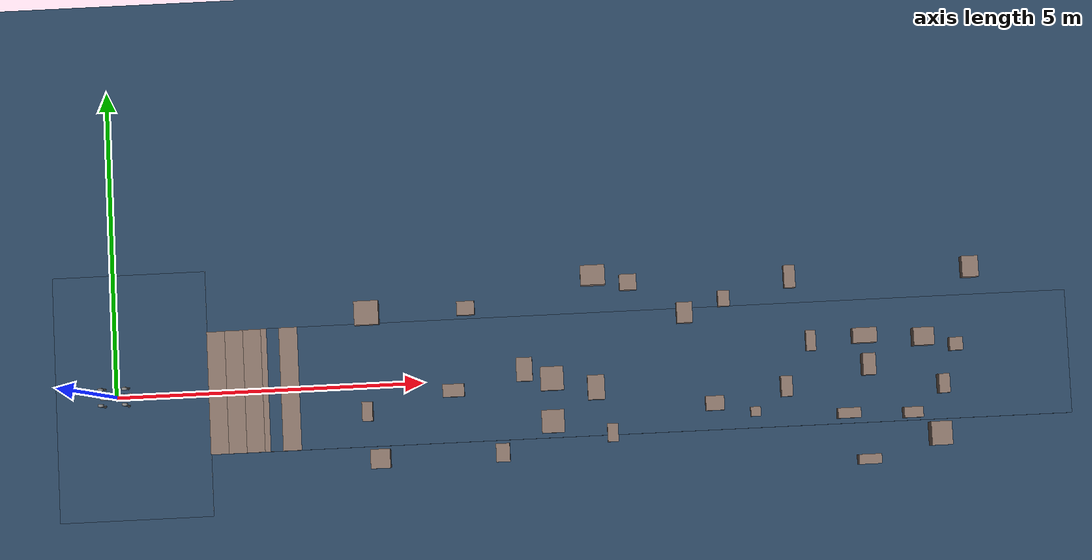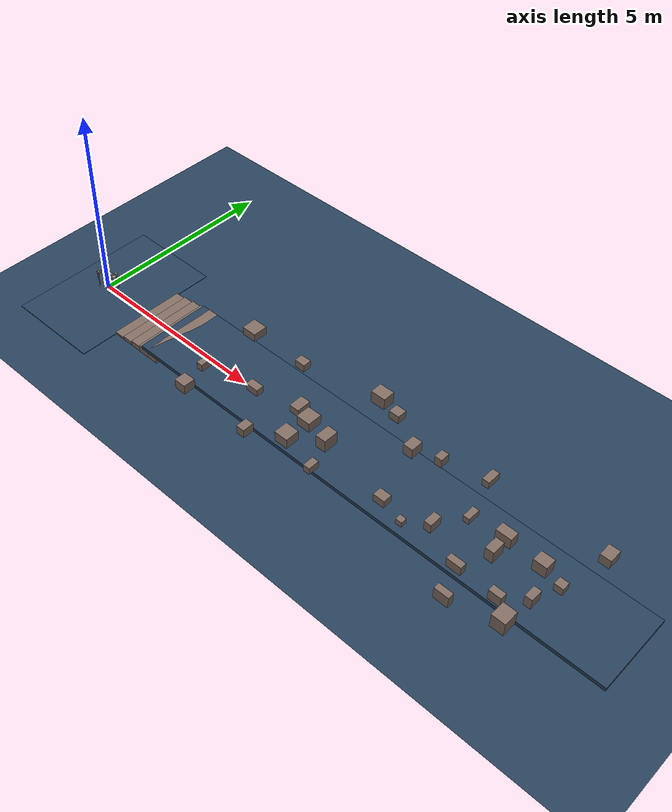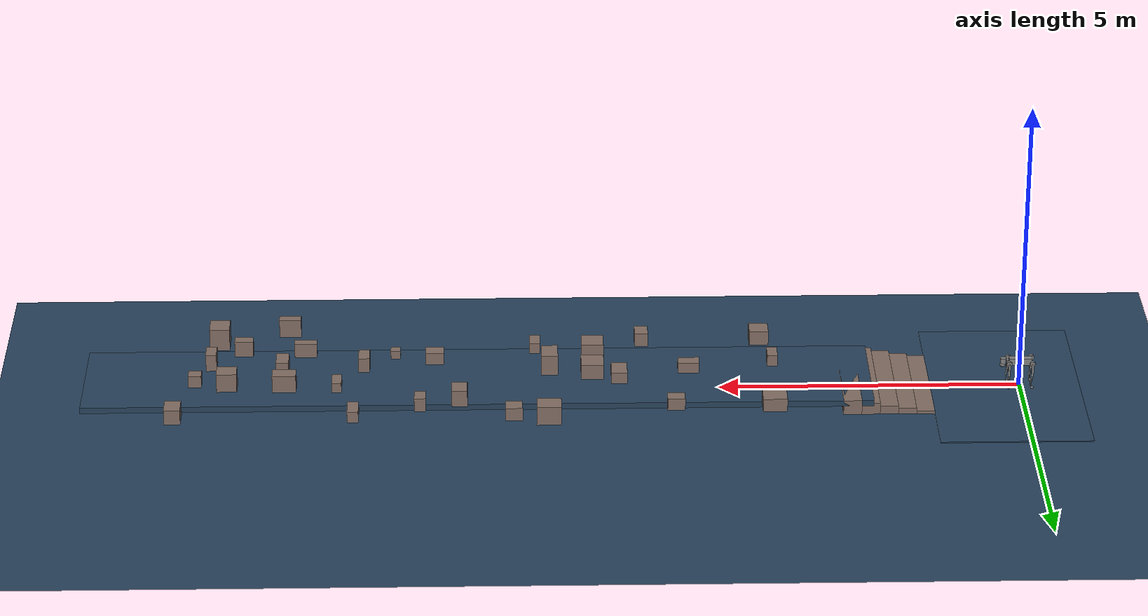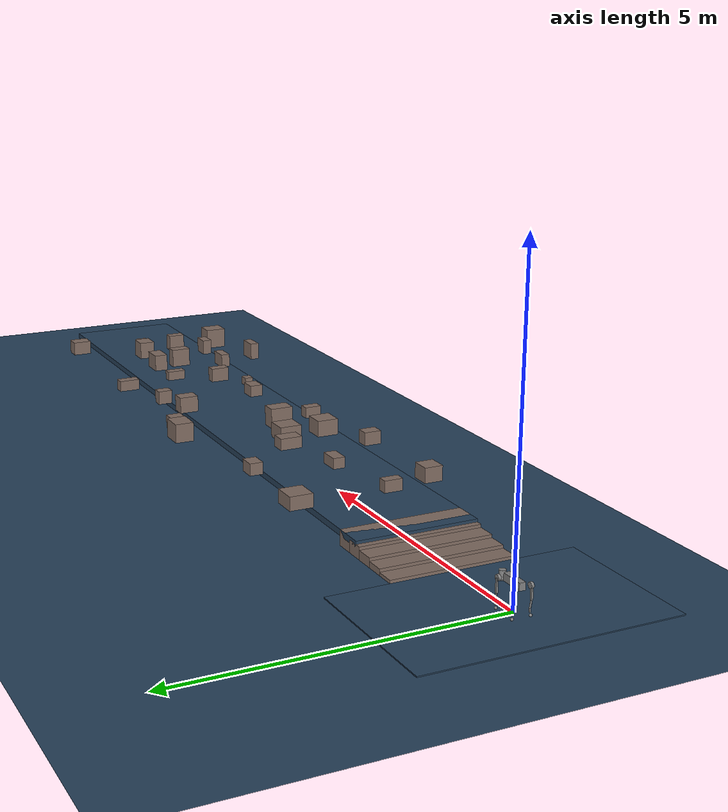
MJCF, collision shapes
<mujoco model="go2 gauntlet">
  <include file="go2_model/go2.xml"/>
  <statistic center="0 0 0.1" extent="0.8"/>
  <visual>
    <headlight diffuse="0.6 0.6 0.6" ambient="0.3 0.3 0.3" specular="0 0 0"/>
    <rgba haze="0.15 0.25 0.35 1"/>
    <global azimuth="-130" elevation="-20"/>
  </visual>
  <asset>
    <texture type="skybox" builtin="gradient" rgb1="0.3 0.5 0.7" rgb2="0 0 0"
             width="512" height="3072"/>
    <texture type="2d" name="groundplane" builtin="checker" mark="edge"
             rgb1="0.2 0.3 0.4" rgb2="0.1 0.2 0.3"
             markrgb="0.8 0.8 0.8" width="300" height="300"/>
    <material name="groundplane" texture="groundplane" texuniform="true"
              texrepeat="5 5" reflectance="0.2"/>
    <material name="rampmat" rgba="0.45 0.45 0.55 1"/>
    <material name="stepmat" rgba="0.5 0.42 0.38 1"/>
  </asset>
  <worldbody>
    <light pos="0 0 1.5" dir="0 0 -1" directional="true"/>
    <!-- Flat run-up -->
    <geom name="floor" type="plane" size="0 0 0.05" material="groundplane"/>
    <geom name="runup" type="box" pos="0.25 0 -0.05" size="1.2500 2.0 0.05" material="groundplane"/>
    <!-- Stairs: 5 steps, 5 cm rise (baseline safe-stalls at this height, Exp3 F3.4) -->
    <geom name="step_0" type="box" pos="1.6500 0 0.0250" size="0.1500 1.0000 0.025000" material="stepmat"/>
    <geom name="step_1" type="box" pos="1.9500 0 0.0500" size="0.1500 1.0000 0.050000" material="stepmat"/>
    <geom name="step_2" type="box" pos="2.2500 0 0.0750" size="0.1500 1.0000 0.075000" material="stepmat"/>
    <geom name="step_3" type="box" pos="2.5500 0 0.1000" size="0.1500 1.0000 0.100000" material="stepmat"/>
    <geom name="step_4" type="box" pos="2.8500 0 0.1250" size="0.1500 1.0000 0.125000" material="stepmat"/>
    <!-- Landing -->
    <geom name="landing" type="box" pos="9.0000 0 0.2000" size="6.5 1.0000 0.05" material="groundplane"/>
    <geom name="obs_0" type="box" pos="10.3696 -0.7367 0.3226" size="0.0801 0.0771 0.0726" material="stepmat"/>
    <geom name="obs_1" type="box" pos="13.1276 0.3412 0.4108" size="0.1662 0.1430 0.1608" material="stepmat"/>
    <geom name="obs_2" type="box" pos="12.1585 -1.5912 0.4076" size="0.1822 0.0792 0.1576" material="stepmat"/>
    <geom name="obs_3" type="box" pos="5.7566 1.1622 0.3515" size="0.1427 0.1125 0.1015" material="stepmat"/>
    <geom name="obs_4" type="box" pos="4.2832 -1.2023 0.3783" size="0.1588 0.1559 0.1283" material="stepmat"/>
    <geom name="obs_5" type="box" pos="7.8368 1.5911 0.4131" size="0.1976 0.1607 0.1631" material="stepmat"/>
    <geom name="obs_6" type="box" pos="10.8845 -0.3555 0.3760" size="0.0919 0.1652 0.1260" material="stepmat"/>
    <geom name="obs_7" type="box" pos="7.1024 -0.0453 0.3802" size="0.1862 0.1918 0.1302" material="stepmat"/>
    <geom name="obs_8" type="box" pos="9.7153 -0.5700 0.3539" size="0.1493 0.1172 0.1039" material="stepmat"/>
    <geom name="obs_9" type="box" pos="12.9027 -0.8731 0.3901" size="0.1529 0.0855 0.1401" material="stepmat"/>
    <geom name="obs_10" type="box" pos="11.8710 -0.8340 0.3733" size="0.1846 0.0823 0.1233" material="stepmat"/>
    <geom name="obs_11" type="box" pos="5.5028 -0.1589 0.3418" size="0.1745 0.1038 0.0918" material="stepmat"/>
    <geom name="obs_12" type="box" pos="8.0455 -0.9648 0.3458" size="0.0863 0.1475 0.0958" material="stepmat"/>
    <geom name="obs_13" type="box" pos="13.4211 -0.4316 0.3980" size="0.0882 0.1536 0.1480" material="stepmat"/>
    <geom name="obs_14" type="box" pos="8.4038 1.4547 0.3614" size="0.1375 0.1282 0.1114" material="stepmat"/>
    <geom name="obs_15" type="box" pos="13.9510 1.4366 0.3771" size="0.1325 0.1697 0.1271" material="stepmat"/>
    <geom name="obs_16" type="box" pos="9.2931 0.9145 0.3927" size="0.1268 0.1668 0.1427" material="stepmat"/>
    <geom name="obs_17" type="box" pos="13.3206 -1.2322 0.4379" size="0.1661 0.1909 0.1879" material="stepmat"/>
    <geom name="obs_18" type="box" pos="4.1471 1.1636 0.3635" size="0.1976 0.1947 0.1135" material="stepmat"/>
    <geom name="obs_19" type="box" pos="12.2237 -0.0640 0.4185" size="0.1040 0.1752 0.1685" material="stepmat"/>
    <geom name="obs_20" type="box" pos="6.6613 0.1246 0.3496" size="0.1303 0.1914 0.0996" material="stepmat"/>
    <geom name="obs_21" type="box" pos="11.3201 0.3660 0.3338" size="0.0785 0.1649 0.0838" material="stepmat"/>
    <geom name="obs_22" type="box" pos="13.6606 0.1991 0.3514" size="0.1074 0.1052 0.1014" material="stepmat"/>
    <geom name="obs_23" type="box" pos="6.2587 -1.2014 0.3652" size="0.1110 0.1483 0.1152" material="stepmat"/>
    <geom name="obs_24" type="box" pos="12.1812 0.4048 0.4013" size="0.1949 0.1212 0.1513" material="stepmat"/>
    <geom name="obs_25" type="box" pos="9.9392 1.1145 0.3701" size="0.0932 0.1258 0.1201" material="stepmat"/>
    <geom name="obs_26" type="box" pos="4.0995 -0.4319 0.3497" size="0.0848 0.1566 0.0997" material="stepmat"/>
    <geom name="obs_27" type="box" pos="11.0265 1.4202 0.3470" size="0.0909 0.1831 0.0970" material="stepmat"/>
    <geom name="obs_28" type="box" pos="7.8077 -0.2247 0.4250" size="0.1361 0.1971 0.1750" material="stepmat"/>
    <geom name="obs_29" type="box" pos="7.0886 -0.7365 0.3899" size="0.1829 0.1852 0.1399" material="stepmat"/>
  </worldbody>
</mujoco>

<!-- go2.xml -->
<mujoco model="go2">
  <compiler angle="radian" meshdir="." autolimits="true"/>

  <option cone="elliptic" impratio="100"/>

  <default>
    <default class="go2">
      <geom friction="0.6" margin="0.001" condim="1"/>
      <joint axis="0 1 0" damping="2" armature="0.01" frictionloss="0.2"/>
      <motor ctrlrange="-23.7 23.7"/>
      <default class="abduction">
        <joint axis="1 0 0" range="-1.0472 1.0472"/>
      </default>
      <default class="hip">
        <default class="front_hip">
          <joint range="-1.5708 3.4907"/>
        </default>
        <default class="back_hip">
          <joint range="-0.5236 4.5379"/>
        </default>
      </default>
      <default class="knee">
        <joint range="-2.7227 -0.83776"/>
        <motor ctrlrange="-45.43 45.43"/>
      </default>
      <default class="visual">
        <geom type="mesh" contype="0" conaffinity="0" group="2"/>
      </default>
      <default class="collision">
        <geom group="3"/>
        <default class="foot">
          <geom size="0.022" pos="-0.002 0 -0.213" priority="1" solimp="0.015 1 0.022" condim="6"
            friction="0.8 0.02 0.01"/>
        </default>
      </default>
    </default>
  </default>

  <asset>
    <material name="metal" rgba=".9 .95 .95 1"/>
    <material name="black" rgba="0 0 0 1"/>
    <material name="white" rgba="1 1 1 1"/>
    <material name="gray" rgba="0.671705 0.692426 0.774270 1"/>

    <mesh file="base_0.obj"/>
    <mesh file="base_1.obj"/>
    <mesh file="base_2.obj"/>
    <mesh file="base_3.obj"/>
    <mesh file="base_4.obj"/>
    <mesh file="hip_0.obj"/>
    <mesh file="hip_1.obj"/>
    <mesh file="thigh_0.obj"/>
    <mesh file="thigh_1.obj"/>
    <mesh file="thigh_mirror_0.obj"/>
    <mesh file="thigh_mirror_1.obj"/>
    <mesh file="calf_0.obj"/>
    <mesh file="calf_1.obj"/>
    <mesh file="calf_mirror_0.obj"/>
    <mesh file="calf_mirror_1.obj"/>
    <mesh file="foot.obj"/>
  </asset>

  <worldbody>
    <body name="base" pos="0 0 0.445" childclass="go2">
      <inertial pos="0.021112 0 -0.005366" quat="-0.000543471 0.713435 -0.00173769 0.700719" mass="6.921"
        diaginertia="0.107027 0.0980771 0.0244531"/>
      <freejoint/>
      <geom mesh="base_0" material="black" class="visual"/>
      <geom mesh="base_1" material="black" class="visual"/>
      <geom mesh="base_2" material="black" class="visual"/>
      <geom mesh="base_3" material="white" class="visual"/>
      <geom mesh="base_4" material="gray" class="visual"/>
      <geom size="0.1881 0.04675 0.057" type="box" class="collision"/>
      <geom size="0.05 0.045" pos="0.285 0 0.01" type="cylinder" class="collision"/>
      <geom size="0.047" pos="0.293 0 -0.06" class="collision"/>
      <site name="imu" pos="-0.02557 0 0.04232"/>
      <body name="FL_hip" pos="0.1934 0.0465 0">
        <inertial pos="-0.0054 0.00194 -0.000105" quat="0.497014 0.499245 0.505462 0.498237" mass="0.678"
          diaginertia="0.00088403 0.000596003 0.000479967"/>
        <joint name="FL_hip_joint" class="abduction"/>
        <geom mesh="hip_0" material="metal" class="visual"/>
        <geom mesh="hip_1" material="gray" class="visual"/>
        <geom size="0.046 0.02" pos="0 0.08 0" quat="1 1 0 0" type="cylinder" class="collision"/>
        <body name="FL_thigh" pos="0 0.0955 0">
          <inertial pos="-0.00374 -0.0223 -0.0327" quat="0.829533 0.0847635 -0.0200632 0.551623" mass="1.152"
            diaginertia="0.00594973 0.00584149 0.000878787"/>
          <joint name="FL_thigh_joint" class="front_hip"/>
          <geom mesh="thigh_0" material="metal" class="visual"/>
          <geom mesh="thigh_1" material="gray" class="visual"/>
          <geom size="0.1065 0.01225 0.017" pos="0 0 -0.1065" quat="0.707107 0 0.707107 0" type="box" class="collision"/>
          <body name="FL_calf" pos="0 0 -0.213">
            <inertial pos="0.00629595 -0.000622121 -0.141417" quat="0.710672 0.00154099 -0.00450087 0.703508"
              mass="0.241352" diaginertia="0.0014901 0.00146356 5.31397e-05"/>
            <joint name="FL_calf_joint" class="knee"/>
            <geom mesh="calf_0" material="gray" class="visual"/>
            <geom mesh="calf_1" material="black" class="visual"/>
            <geom size="0.012 0.06" pos="0.008 0 -0.06" quat="0.994493 0 -0.104807 0" type="cylinder" class="collision"/>
            <geom size="0.011 0.0325" pos="0.02 0 -0.148" quat="0.999688 0 0.0249974 0" type="cylinder" class="collision"/>
            <geom pos="0 0 -0.213" mesh="foot" class="visual" material="black"/>
            <geom name="FL" class="foot"/>
          </body>
        </body>
      </body>
      <body name="FR_hip" pos="0.1934 -0.0465 0">
        <inertial pos="-0.0054 -0.00194 -0.000105" quat="0.498237 0.505462 0.499245 0.497014" mass="0.678"
          diaginertia="0.00088403 0.000596003 0.000479967"/>
        <joint name="FR_hip_joint" class="abduction"/>
        <geom mesh="hip_0" material="metal" class="visual" quat="4.63268e-05 1 0 0"/>
        <geom mesh="hip_1" material="gray" class="visual" quat="4.63268e-05 1 0 0"/>
        <geom size="0.046 0.02" pos="0 -0.08 0" quat="0.707107 0.707107 0 0" type="cylinder" class="collision"/>
        <body name="FR_thigh" pos="0 -0.0955 0">
          <inertial pos="-0.00374 0.0223 -0.0327" quat="0.551623 -0.0200632 0.0847635 0.829533" mass="1.152"
            diaginertia="0.00594973 0.00584149 0.000878787"/>
          <joint name="FR_thigh_joint" class="front_hip"/>
          <geom mesh="thigh_mirror_0" material="metal" class="visual"/>
          <geom mesh="thigh_mirror_1" material="gray" class="visual"/>
          <geom size="0.1065 0.01225 0.017" pos="0 0 -0.1065" quat="0.707107 0 0.707107 0" type="box" class="collision"/>
          <body name="FR_calf" pos="0 0 -0.213">
            <inertial pos="0.00629595 0.000622121 -0.141417" quat="0.703508 -0.00450087 0.00154099 0.710672"
              mass="0.241352" diaginertia="0.0014901 0.00146356 5.31397e-05"/>
            <joint name="FR_calf_joint" class="knee"/>
            <geom mesh="calf_mirror_0" material="gray" class="visual"/>
            <geom mesh="calf_mirror_1" material="black" class="visual"/>
            <geom size="0.013 0.06" pos="0.01 0 -0.06" quat="0.995004 0 -0.0998334 0" type="cylinder" class="collision"/>
            <geom size="0.011 0.0325" pos="0.02 0 -0.148" quat="0.999688 0 0.0249974 0" type="cylinder" class="collision"/>
            <geom pos="0 0 -0.213" mesh="foot" class="visual" material="black"/>
            <geom name="FR" class="foot"/>
          </body>
        </body>
      </body>
      <body name="RL_hip" pos="-0.1934 0.0465 0">
        <inertial pos="0.0054 0.00194 -0.000105" quat="0.505462 0.498237 0.497014 0.499245" mass="0.678"
          diaginertia="0.00088403 0.000596003 0.000479967"/>
        <joint name="RL_hip_joint" class="abduction"/>
        <geom mesh="hip_0" material="metal" class="visual" quat="4.63268e-05 0 1 0"/>
        <geom mesh="hip_1" material="gray" class="visual" quat="4.63268e-05 0 1 0"/>
        <geom size="0.046 0.02" pos="0 0.08 0" quat="0.707107 0.707107 0 0" type="cylinder" class="collision"/>
        <body name="RL_thigh" pos="0 0.0955 0">
          <inertial pos="-0.00374 -0.0223 -0.0327" quat="0.829533 0.0847635 -0.0200632 0.551623" mass="1.152"
            diaginertia="0.00594973 0.00584149 0.000878787"/>
          <joint name="RL_thigh_joint" class="back_hip"/>
          <geom mesh="thigh_0" material="metal" class="visual"/>
          <geom mesh="thigh_1" material="gray" class="visual"/>
          <geom size="0.1065 0.01225 0.017" pos="0 0 -0.1065" quat="0.707107 0 0.707107 0" type="box" class="collision"/>
          <body name="RL_calf" pos="0 0 -0.213">
            <inertial pos="0.00629595 -0.000622121 -0.141417" quat="0.710672 0.00154099 -0.00450087 0.703508"
              mass="0.241352" diaginertia="0.0014901 0.00146356 5.31397e-05"/>
            <joint name="RL_calf_joint" class="knee"/>
            <geom mesh="calf_0" material="gray" class="visual"/>
            <geom mesh="calf_1" material="black" class="visual"/>
            <geom size="0.013 0.06" pos="0.01 0 -0.06" quat="0.995004 0 -0.0998334 0" type="cylinder" class="collision"/>
            <geom size="0.011 0.0325" pos="0.02 0 -0.148" quat="0.999688 0 0.0249974 0" type="cylinder" class="collision"/>
            <geom pos="0 0 -0.213" mesh="foot" class="visual" material="black"/>
            <geom name="RL" class="foot"/>
          </body>
        </body>
      </body>
      <body name="RR_hip" pos="-0.1934 -0.0465 0">
        <inertial pos="0.0054 -0.00194 -0.000105" quat="0.499245 0.497014 0.498237 0.505462" mass="0.678"
          diaginertia="0.00088403 0.000596003 0.000479967"/>
        <joint name="RR_hip_joint" class="abduction"/>
        <geom mesh="hip_0" material="metal" class="visual" quat="2.14617e-09 4.63268e-05 4.63268e-05 -1"/>
        <geom mesh="hip_1" material="gray" class="visual" quat="2.14617e-09 4.63268e-05 4.63268e-05 -1"/>
        <geom size="0.046 0.02" pos="0 -0.08 0" quat="0.707107 0.707107 0 0" type="cylinder" class="collision"/>
        <body name="RR_thigh" pos="0 -0.0955 0">
          <inertial pos="-0.00374 0.0223 -0.0327" quat="0.551623 -0.0200632 0.0847635 0.829533" mass="1.152"
            diaginertia="0.00594973 0.00584149 0.000878787"/>
          <joint name="RR_thigh_joint" class="back_hip"/>
          <geom mesh="thigh_mirror_0" material="metal" class="visual"/>
          <geom mesh="thigh_mirror_1" material="gray" class="visual"/>
          <geom size="0.1065 0.01225 0.017" pos="0 0 -0.1065" quat="0.707107 0 0.707107 0" type="box" class="collision"/>
          <body name="RR_calf" pos="0 0 -0.213">
            <inertial pos="0.00629595 0.000622121 -0.141417" quat="0.703508 -0.00450087 0.00154099 0.710672"
              mass="0.241352" diaginertia="0.0014901 0.00146356 5.31397e-05"/>
            <joint name="RR_calf_joint" class="knee"/>
            <geom mesh="calf_mirror_0" material="gray" class="visual"/>
            <geom mesh="calf_mirror_1" material="black" class="visual"/>
            <geom size="0.013 0.06" pos="0.01 0 -0.06" quat="0.995004 0 -0.0998334 0" type="cylinder" class="collision"/>
            <geom size="0.011 0.0325" pos="0.02 0 -0.148" quat="0.999688 0 0.0249974 0" type="cylinder" class="collision"/>
            <geom pos="0 0 -0.213" mesh="foot" class="visual" material="black"/>
            <geom name="RR" class="foot"/>
          </body>
        </body>
      </body>
    </body>
  </worldbody>

  <actuator>
    <motor class="abduction" name="FL_hip" joint="FL_hip_joint"/>
    <motor class="hip" name="FL_thigh" joint="FL_thigh_joint"/>
    <motor class="knee" name="FL_calf" joint="FL_calf_joint"/>
    <motor class="abduction" name="FR_hip" joint="FR_hip_joint"/>
    <motor class="hip" name="FR_thigh" joint="FR_thigh_joint"/>
    <motor class="knee" name="FR_calf" joint="FR_calf_joint"/>
    <motor class="abduction" name="RL_hip" joint="RL_hip_joint"/>
    <motor class="hip" name="RL_thigh" joint="RL_thigh_joint"/>
    <motor class="knee" name="RL_calf" joint="RL_calf_joint"/>
    <motor class="abduction" name="RR_hip" joint="RR_hip_joint"/>
    <motor class="hip" name="RR_thigh" joint="RR_thigh_joint"/>
    <motor class="knee" name="RR_calf" joint="RR_calf_joint"/>
  </actuator>

  <keyframe>
    <key name="home" qpos="0 0 0.27 1 0 0 0 0 0.9 -1.8 0 0.9 -1.8 0 0.9 -1.8 0 0.9 -1.8"
      ctrl="0 0.9 -1.8 0 0.9 -1.8 0 0.9 -1.8 0 0.9 -1.8"/>
  </keyframe>
</mujoco>
